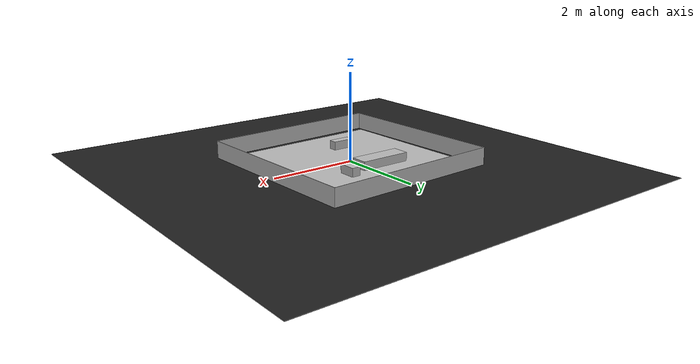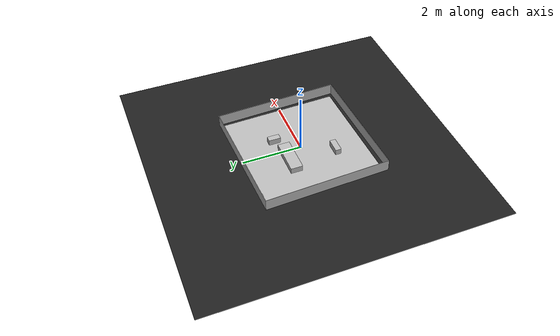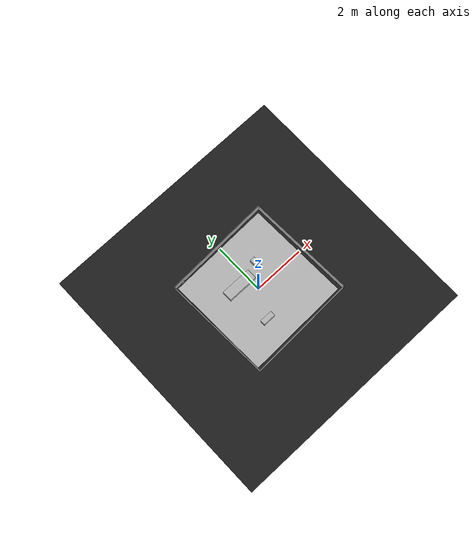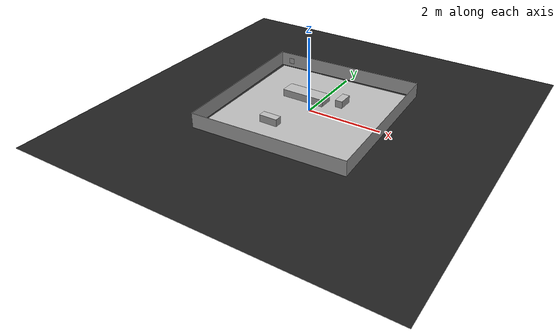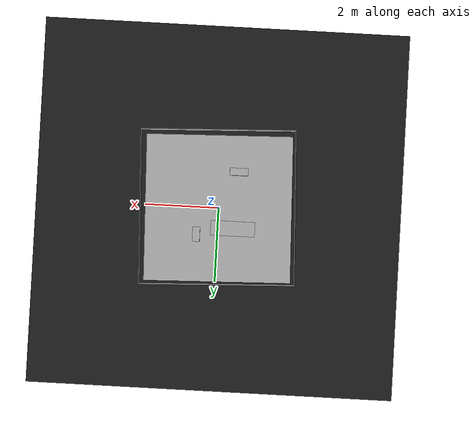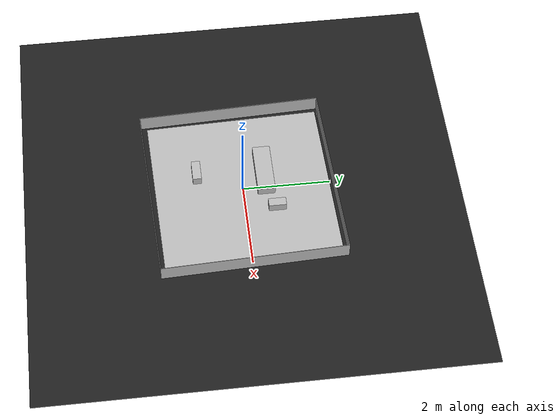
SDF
<sdf version='1.6'>
  <world name='default'>
    <scene>
      <ambient>0 0 0 1</ambient>
      <shadows>0</shadows>
      <grid>0</grid>
      <background>0.7 0.7 0.7 1</background>
    </scene>

    <include>
      <uri>model://turtlebot3_selfdriving/course</uri>
      <pose> 0 0 0 0 0 -1.54</pose>
    </include>

    <light name='sun' type='directional'>
      <cast_shadows>1</cast_shadows>
      <pose frame=''>0 0 10 0 -0 0</pose>
      <diffuse>0.8 0.8 0.8 1</diffuse>
      <specular>0.1 0.1 0.1 1</specular>
      <attenuation>
        <range>1000</range>
        <constant>0.9</constant>
        <linear>0.01</linear>
        <quadratic>0.001</quadratic>
      </attenuation>
      <direction>-0.5 0.5 -1</direction>
    </light>
    <model name='ground2'>
      <pose frame=''>0 0 -0.1 0 0 0</pose>
      <static>1</static>
      <link name='ground'>
        <collision name='ground_coll'>
          <geometry>
            <box>
              <size>8 8 0.01</size>
            </box>
          </geometry>
          <surface>
            <contact>
              <ode/>
            </contact>
            <bounce/>
            <friction>
              <torsional>
                <ode/>
              </torsional>
              <ode/>
            </friction>
          </surface>
          <max_contacts>10</max_contacts>
        </collision>
        <visual name='ground_vis'>
          <geometry>
            <box>
              <size>10 10 0.01</size>
            </box>
          </geometry>
          <material>
            <script>
              <uri>file://media/materials/scripts/gazebo.material</uri>
              <name>Gazebo/FlatBlack</name>
            </script>
          </material>
        </visual>
        <self_collide>0</self_collide>
        <kinematic>0</kinematic>
        <gravity>1</gravity>
      </link>
    </model>
    <model name='wall'>
      <static>true</static>
      <link name='wall_link'>
        <pose>-1.98 -2.2 0 0 0 0.04</pose>
        <visual name='wall'>
          <geometry>
            <mesh>
              <uri>model://turtlebot3_selfdriving/meshes/course-wall.stl</uri>
            </mesh>
          </geometry>
          <material/>
        </visual>
         <collision name='wall'>
          <geometry>
            <mesh>
              <uri>model://turtlebot3_selfdriving/meshes/course-wall.stl</uri>
            </mesh>
          </geometry>
        </collision>
      </link>
    </model>
    <include>
      <uri>model://turtlebot3_selfdriving/stop</uri>
      <pose>-1.8 1.95 0.2 0 1.57 1.57</pose>
    </include>
    <model name='buildings'>
      <static>true</static>
      <link name='wall_link'>
        <pose>0 0 0 0 0 0.2</pose>
        <visual name='building1'>
          <pose>0.7 0.6 0 0 0 -0.2</pose>
          <geometry>
            <box>
              <size>0.2 0.4 0.4</size>
            </box>
          </geometry>
          <material/>
        </visual>
         <collision name='building1'>
          <pose>0.7 0.6 0 0 0 -0.2</pose>
          <geometry>
            <box>
              <size>0.2 0.4 0.4</size>
            </box>
          </geometry>
        </collision>
        <visual name='building2'>
          <pose>-0.3 0.6 0 0 0 -0.2</pose>
          <geometry>
            <box>
              <size>1.2 0.4 0.4</size>
            </box>
          </geometry>
          <material/>
        </visual>
         <collision name='building2'>
          <pose>-0.3 0.6 0 0 0 -0.2</pose>
          <geometry>
            <box>
              <size>1.2 0.4 0.4</size>
            </box>
          </geometry>
        </collision>
        <visual name='building3'>
          <pose>-0.7 -0.9 0 0 0 -0.2</pose>
          <geometry>
            <box>
              <size>0.5 0.2 0.4</size>
            </box>
          </geometry>
          <material/>
        </visual>
         <collision name='building3'>
          <pose>-0.7 -0.9 0 0 0 -0.2</pose>
          <geometry>
            <box>
              <size>0.5 0.2 0.4</size>
            </box>
          </geometry>
        </collision>
      </link>
    </model>
    <gravity>0 0 -9.8</gravity>
    <magnetic_field>6e-06 2.3e-05 -4.2e-05</magnetic_field>
    <atmosphere type='adiabatic'/>
    <physics name='default_physics' default='0' type='ode'>
      <max_step_size>0.001</max_step_size>
      <real_time_factor>1</real_time_factor>
      <real_time_update_rate>1000</real_time_update_rate>
    </physics>
    <spherical_coordinates>
      <surface_model>EARTH_WGS84</surface_model>
      <latitude_deg>0</latitude_deg>
      <longitude_deg>0</longitude_deg>
      <elevation>0</elevation>
      <heading_deg>0</heading_deg>
    </spherical_coordinates>

    <light name='user_point_light_6' type='point'>
      <pose frame=''>1.63854 1.69565 3 0 -0 0</pose>
      <diffuse>0.5 0.5 0.5 1</diffuse>
      <specular>0.1 0.1 0.1 1</specular>
      <attenuation>
        <range>6</range>
        <constant>0.5</constant>
        <linear>0.01</linear>
        <quadratic>0.001</quadratic>
      </attenuation>
      <cast_shadows>0</cast_shadows>
      <direction>0 0 -1</direction>
    </light>
    <light name='user_point_light_7' type='point'>
      <pose frame=''>0.42  -2.71 3 0 -0 0</pose>
      <diffuse>0.5 0.5 0.5 1</diffuse>
      <specular>0.1 0.1 0.1 1</specular>
      <attenuation>
        <range>6</range>
        <constant>0.5</constant>
        <linear>0.01</linear>
        <quadratic>0.001</quadratic>
      </attenuation>
      <cast_shadows>0</cast_shadows>
      <direction>0 0 -1</direction>
    </light>

    <light name='user_point_light_8' type='point'>
      <pose frame=''>-1.8 1.5 3 0 -0 0</pose>
      <diffuse>0.5 0.5 0.5 1</diffuse>
      <specular>0.1 0.1 0.1 1</specular>
      <attenuation>
        <range>6</range>
        <constant>0.5</constant>
        <linear>0.01</linear>
        <quadratic>0.001</quadratic>
      </attenuation>
      <cast_shadows>0</cast_shadows>
      <direction>0 0 -1</direction>
    </light>
    <gui fullscreen='0'>
      <camera name='user_camera'>
        <pose frame=''>2.7696 -1.93094 6.71513 0 1.1618 2.27182</pose>
        <view_controller>orbit</view_controller>
        <projection_type>perspective</projection_type>
      </camera>
    </gui>
  </world>
</sdf>

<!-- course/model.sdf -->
<sdf version="1.6">
  <model name="course">
    <static>true</static>
    <link name="course_link">
      <collision name="course_collision">
        <geometry>
          <plane>
            <normal>0 0 1</normal>
            <size>4 4</size>
          </plane>
        </geometry>
        <surface>
          <friction>
            <ode>
              <mu>100</mu>
              <mu2>50</mu2>
            </ode>
          </friction>
        </surface>
      </collision>
      <visual name="course_visual">
        <cast_shadows>false</cast_shadows>
        <geometry>
	        <plane>
            <normal>0 0 1</normal>
            <size>4 4</size>
          </plane>
        </geometry>
	      <material>
          <script>
            <uri>model://turtlebot3_selfdriving/course/materials/scripts</uri>
            <uri>model://turtlebot3_selfdriving/course/materials/textures</uri>
            <name>course</name>
          </script>
        </material>
      </visual>
    </link>
  </model>
</sdf>

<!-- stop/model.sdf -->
<sdf version="1.6">
  <model name="stop">
    <static>true</static>
    <link name="stop_link">
      <collision name="stop_collision">
        <geometry>
            <box>
              <size>0.155 0.155 0.01</size>
            </box>
        </geometry>
      </collision>
      <visual name="stop_visual">
        <cast_shadows>false</cast_shadows>
        <geometry>
            <box>
              <size>0.155 0.155 0.01</size>
            </box>
        </geometry>
	      <material>
          <script>
            <uri>model://turtlebot3_selfdriving/stop/materials/scripts</uri>
            <uri>model://turtlebot3_selfdriving/stop/materials/textures</uri>
            <name>stop</name>
          </script>
        </material>
      </visual>
    </link>
  </model>
</sdf>
